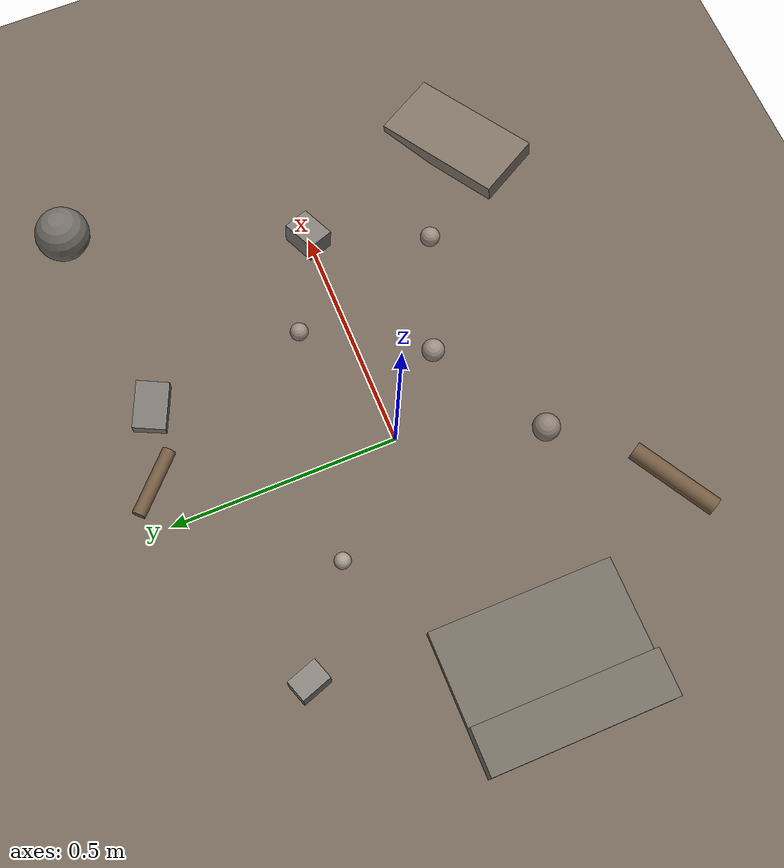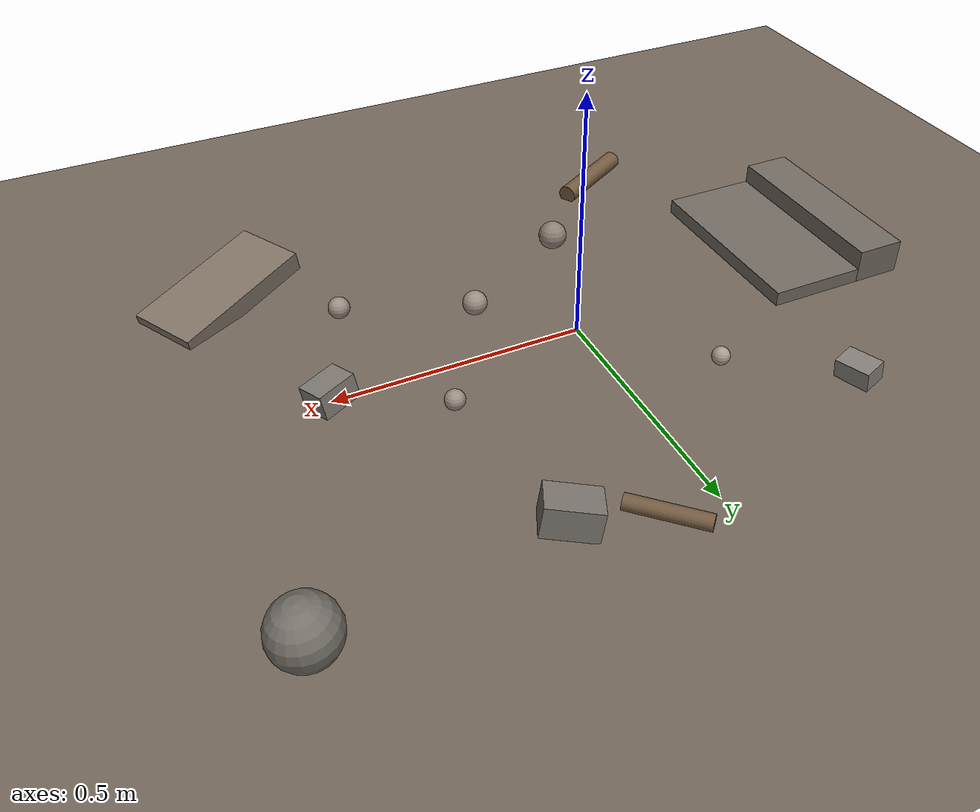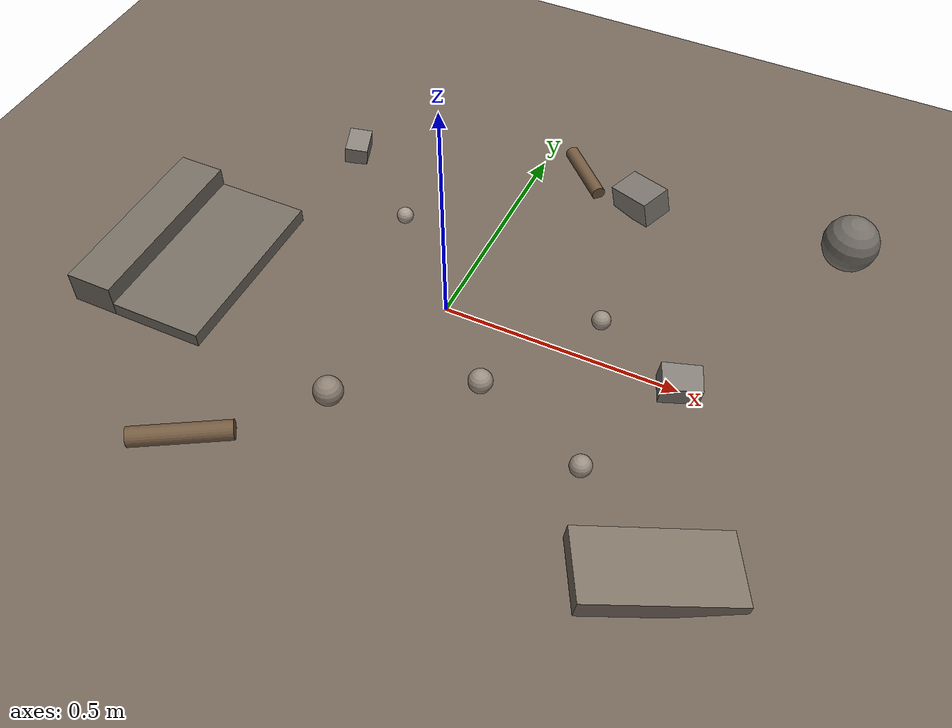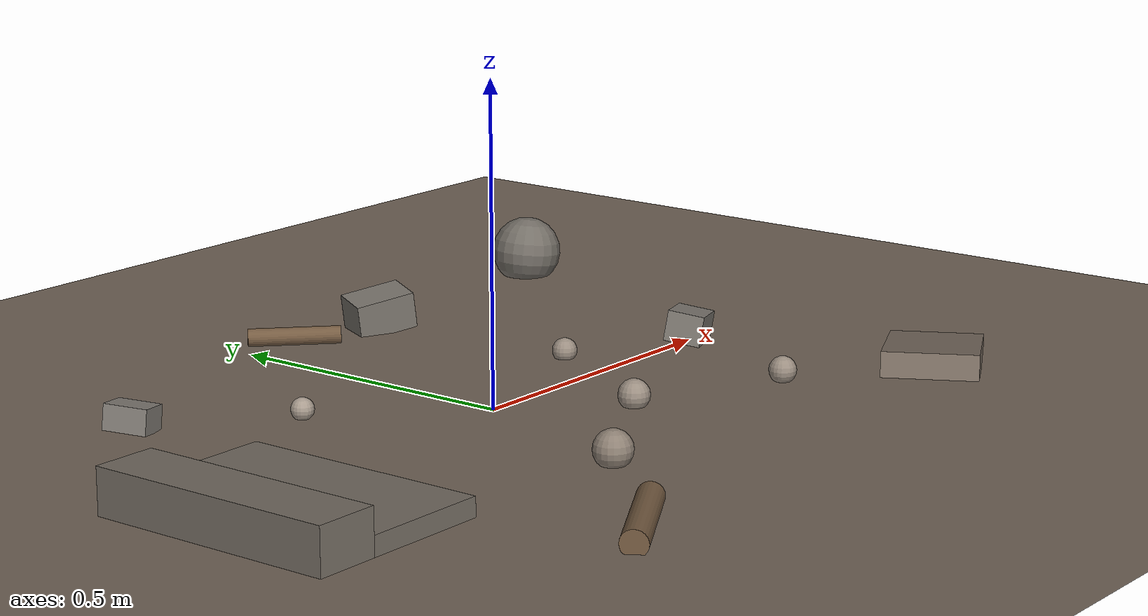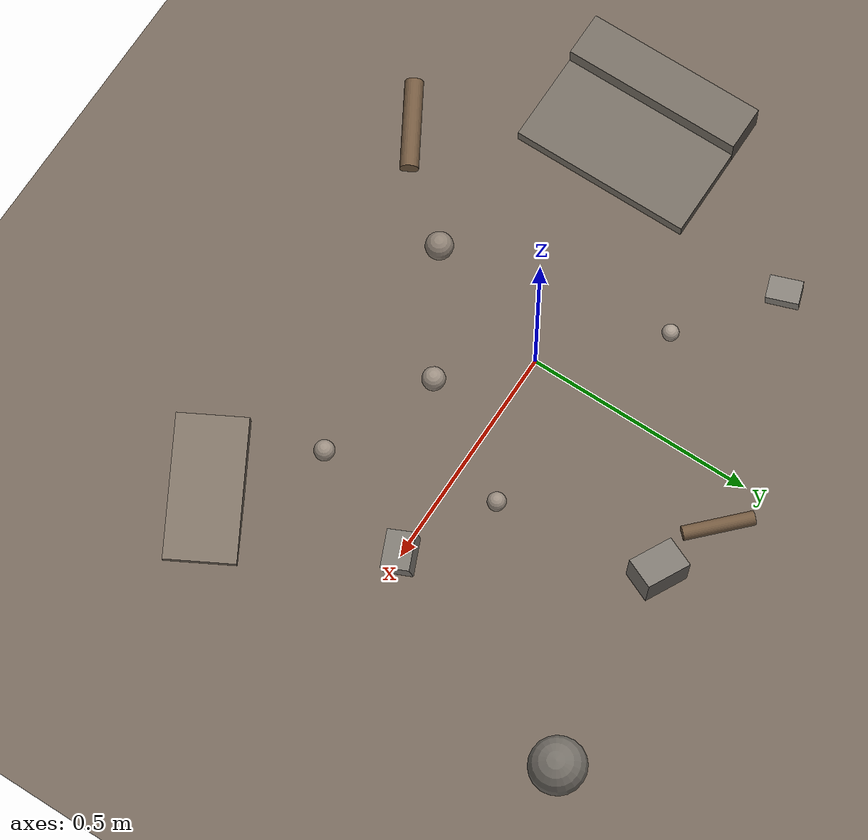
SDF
<?xml version="1.0" ?>
<sdf version="1.8">
  <world name="diddler_world">
    <physics name="1ms" type="ignored">
      <max_step_size>0.001</max_step_size>
      <real_time_factor>1.0</real_time_factor>
    </physics>
    <plugin filename="libgz-sim-physics-system.so" name="gz::sim::systems::Physics"/>
    <plugin filename="gz-sim-sensors-system" name="gz::sim::systems::Sensors">
      <render_engine>ogre2</render_engine>
    </plugin>
    <plugin filename="gz-sim-user-commands-system" name="gz::sim::systems::UserCommands"/>
    <plugin filename="libgz-sim-scene-broadcaster-system.so" name="gz::sim::systems::SceneBroadcaster"/>
    <plugin filename="libgz-sim-contact-system.so" name="gz::sim::systems::Contact"/>

    <scene>
      <ambient>.4 .4 .4</ambient>
      <sky></sky>
    </scene>

    <light type="directional" name="sun">
      <cast_shadows>true</cast_shadows>
      <pose>0 0 10 0 0 0</pose>
      <diffuse>0.8 0.8 0.8 1</diffuse>
      <specular>0.2 0.2 0.2 1</specular>
      <attenuation>
        <range>1000</range>
        <constant>0.9</constant>
        <linear>0.01</linear>
        <quadratic>0.001</quadratic>
      </attenuation>
      <direction>-0.5 0.1 -0.9</direction>
    </light>

    <!-- Ground Plane -->
    <model name="ground_plane">
      <pose>0 0 0 0 0 0</pose>
      <static>true</static>
      <link name="link">
        <collision name="collision">
          <geometry>
            <plane>
              <normal>0 0 1</normal>
              <size>20 20</size>
            </plane>
          </geometry>
          <surface>
            <friction>
              <ode><mu>1.0</mu><mu2>1.0</mu2></ode>
            </friction>
          </surface>
        </collision>
        <visual name="visual">
          <geometry>
            <plane>
              <normal>0 0 1</normal>
              <size>20 20</size>
            </plane>
          </geometry>
          <material>
            <ambient>0.35 0.30 0.25 1</ambient>
            <diffuse>0.45 0.40 0.35 1</diffuse>
            <specular>0.1 0.1 0.1 1</specular>
          </material>
        </visual>
      </link>
    </model>

    <!-- ============ ROUGH TERRAIN: Bumps & Ramps ============ -->

    <!-- Small bump field (scattered pebbles) -->
    <model name="bump1">
      <pose>0.3 0.1 0.01 0 0 0.3</pose>
      <static>true</static>
      <link name="link">
        <collision name="col"><geometry><sphere><radius>0.02</radius></sphere></geometry></collision>
        <visual name="vis"><geometry><sphere><radius>0.02</radius></sphere></geometry>
          <material><ambient>0.5 0.45 0.4 1</ambient><diffuse>0.6 0.55 0.5 1</diffuse></material>
        </visual>
      </link>
    </model>

    <model name="bump2">
      <pose>0.15 -0.15 0.015 0 0 1.1</pose>
      <static>true</static>
      <link name="link">
        <collision name="col"><geometry><sphere><radius>0.025</radius></sphere></geometry></collision>
        <visual name="vis"><geometry><sphere><radius>0.025</radius></sphere></geometry>
          <material><ambient>0.5 0.45 0.4 1</ambient><diffuse>0.6 0.55 0.5 1</diffuse></material>
        </visual>
      </link>
    </model>

    <model name="bump3">
      <pose>-0.2 0.2 0.012 0 0 2.5</pose>
      <static>true</static>
      <link name="link">
        <collision name="col"><geometry><sphere><radius>0.018</radius></sphere></geometry></collision>
        <visual name="vis"><geometry><sphere><radius>0.018</radius></sphere></geometry>
          <material><ambient>0.55 0.5 0.45 1</ambient><diffuse>0.65 0.6 0.55 1</diffuse></material>
        </visual>
      </link>
    </model>

    <model name="bump4">
      <pose>-0.1 -0.3 0.02 0 0 0.7</pose>
      <static>true</static>
      <link name="link">
        <collision name="col"><geometry><sphere><radius>0.03</radius></sphere></geometry></collision>
        <visual name="vis"><geometry><sphere><radius>0.03</radius></sphere></geometry>
          <material><ambient>0.45 0.4 0.35 1</ambient><diffuse>0.55 0.5 0.45 1</diffuse></material>
        </visual>
      </link>
    </model>

    <model name="bump5">
      <pose>0.4 -0.25 0.015 0 0 1.8</pose>
      <static>true</static>
      <link name="link">
        <collision name="col"><geometry><sphere><radius>0.022</radius></sphere></geometry></collision>
        <visual name="vis"><geometry><sphere><radius>0.022</radius></sphere></geometry>
          <material><ambient>0.5 0.45 0.4 1</ambient><diffuse>0.6 0.55 0.5 1</diffuse></material>
        </visual>
      </link>
    </model>

    <!-- Medium rocks -->
    <model name="rock1">
      <pose>0.5 0.0 0.025 0.15 0.1 0.4</pose>
      <static>true</static>
      <link name="link">
        <collision name="col"><geometry><box><size>0.08 0.06 0.05</size></box></geometry></collision>
        <visual name="vis"><geometry><box><size>0.08 0.06 0.05</size></box></geometry>
          <material><ambient>0.4 0.38 0.35 1</ambient><diffuse>0.5 0.48 0.45 1</diffuse></material>
        </visual>
      </link>
    </model>

    <model name="rock2">
      <pose>-0.4 0.35 0.02 0.1 -0.05 1.9</pose>
      <static>true</static>
      <link name="link">
        <collision name="col"><geometry><box><size>0.07 0.05 0.04</size></box></geometry></collision>
        <visual name="vis"><geometry><box><size>0.07 0.05 0.04</size></box></geometry>
          <material><ambient>0.42 0.4 0.37 1</ambient><diffuse>0.52 0.5 0.47 1</diffuse></material>
        </visual>
      </link>
    </model>

    <model name="rock3">
      <pose>0.25 0.45 0.03 -0.1 0.15 2.7</pose>
      <static>true</static>
      <link name="link">
        <collision name="col"><geometry><box><size>0.1 0.07 0.06</size></box></geometry></collision>
        <visual name="vis"><geometry><box><size>0.1 0.07 0.06</size></box></geometry>
          <material><ambient>0.38 0.36 0.33 1</ambient><diffuse>0.48 0.46 0.43 1</diffuse></material>
        </visual>
      </link>
    </model>

    <!-- Ramp / slope -->
    <model name="ramp1">
      <pose>0.6 -0.4 0.02 0 0.15 0.5</pose>
      <static>true</static>
      <link name="link">
        <collision name="col"><geometry><box><size>0.3 0.15 0.04</size></box></geometry></collision>
        <visual name="vis"><geometry><box><size>0.3 0.15 0.04</size></box></geometry>
          <material><ambient>0.4 0.35 0.3 1</ambient><diffuse>0.5 0.45 0.4 1</diffuse></material>
        </visual>
      </link>
    </model>

    <!-- Step / ledge -->
    <model name="step1">
      <pose>-0.5 -0.1 0.015 0 0 0</pose>
      <static>true</static>
      <link name="link">
        <collision name="col"><geometry><box><size>0.2 0.4 0.03</size></box></geometry></collision>
        <visual name="vis"><geometry><box><size>0.2 0.4 0.03</size></box></geometry>
          <material><ambient>0.35 0.32 0.28 1</ambient><diffuse>0.45 0.42 0.38 1</diffuse></material>
        </visual>
      </link>
    </model>

    <model name="step2">
      <pose>-0.65 -0.1 0.035 0 0 0</pose>
      <static>true</static>
      <link name="link">
        <collision name="col"><geometry><box><size>0.1 0.4 0.07</size></box></geometry></collision>
        <visual name="vis"><geometry><box><size>0.1 0.4 0.07</size></box></geometry>
          <material><ambient>0.35 0.32 0.28 1</ambient><diffuse>0.45 0.42 0.38 1</diffuse></material>
        </visual>
      </link>
    </model>

    <!-- Scattered small cylinders (logs/debris) -->
    <model name="log1">
      <pose>0.1 0.5 0.01 1.5708 0 0.8</pose>
      <static>true</static>
      <link name="link">
        <collision name="col"><geometry><cylinder><radius>0.015</radius><length>0.15</length></cylinder></geometry></collision>
        <visual name="vis"><geometry><cylinder><radius>0.015</radius><length>0.15</length></cylinder></geometry>
          <material><ambient>0.35 0.25 0.15 1</ambient><diffuse>0.45 0.35 0.25 1</diffuse></material>
        </visual>
      </link>
    </model>

    <model name="log2">
      <pose>-0.3 -0.5 0.012 1.5708 0 2.1</pose>
      <static>true</static>
      <link name="link">
        <collision name="col"><geometry><cylinder><radius>0.02</radius><length>0.2</length></cylinder></geometry></collision>
        <visual name="vis"><geometry><cylinder><radius>0.02</radius><length>0.2</length></cylinder></geometry>
          <material><ambient>0.35 0.25 0.15 1</ambient><diffuse>0.45 0.35 0.25 1</diffuse></material>
        </visual>
      </link>
    </model>

    <!-- Larger boulder -->
    <model name="boulder1">
      <pose>0.7 0.5 0.04 0.1 0.05 0.9</pose>
      <static>true</static>
      <link name="link">
        <collision name="col"><geometry><sphere><radius>0.06</radius></sphere></geometry></collision>
        <visual name="vis"><geometry><sphere><radius>0.06</radius></sphere></geometry>
          <material><ambient>0.35 0.33 0.3 1</ambient><diffuse>0.45 0.43 0.4 1</diffuse></material>
        </visual>
      </link>
    </model>

  </world>
</sdf>
